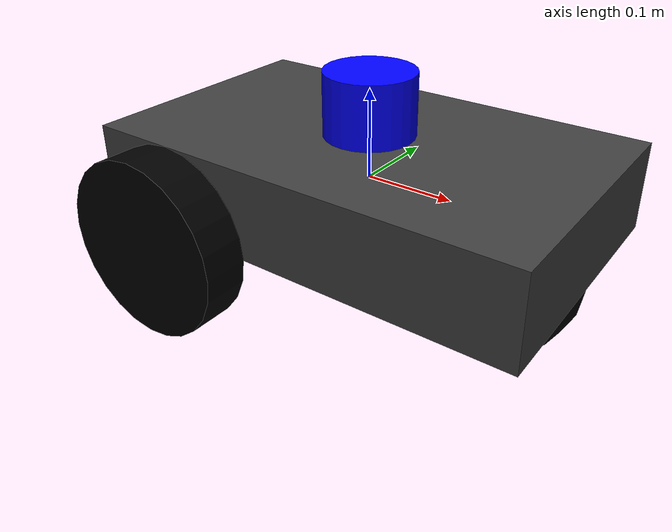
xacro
<?xml version="1.0"?>

<robot name="differential_drive_robot" xmlns:xacro="http://www.ros.org/wiki/xacro">

    <!-- Robot Parameters -->
    <xacro:property name="PI" value="3.14159265"/>
    <xacro:property name="body_length" value="0.5"/>
    <xacro:property name="body_width" value="0.3"/>
    <xacro:property name="body_height" value="0.1"/>
    <xacro:property name="body_density" value="7850.0"/> <!-- Steel -->
    <xacro:property name="body_mass" value="${body_density * body_length * body_height * body_width}"/>
    <xacro:property name="body_inertia_x" value="${1.0/12.0 * body_mass * (body_height*body_height + body_width*body_width)}"/>
    <xacro:property name="body_inertia_y" value="${1.0/12.0 * body_mass * (body_length*body_length + body_height*body_height)}"/>
    <xacro:property name="body_inertia_z" value="${1.0/12.0 * body_mass * (body_length*body_length + body_width*body_width)}"/>

    <xacro:property name="wheel_radius" value="0.1"/>
    <xacro:property name="wheel_width" value="0.05"/>
    <xacro:property name="wheel_separation" value="${body_width + wheel_width}"/>
    <xacro:property name="wheel_offset" value="${body_length/2 - wheel_radius}"/>
    <xacro:property name="wheel_density" value="900"/> <!-- Ruber -->
    <xacro:property name="wheel_mass" value="${wheel_density * PI * wheel_radius * wheel_radius * wheel_width}"/>
    <xacro:property name="wheel_inertia_x" value="${1.0/12.0 * wheel_mass * (3*wheel_radius*wheel_radius + wheel_width*wheel_width)}"/>
    <xacro:property name="wheel_inertia_y" value="${1.0/12.0 * wheel_mass * (3*wheel_radius*wheel_radius + wheel_width*wheel_width)}"/>
    <xacro:property name="wheel_inertia_z" value="${1.0/2.0 * wheel_mass * wheel_radius * wheel_radius}"/>

    <xacro:property name="caster_radius" value="0.1"/>
    <xacro:property name="caster_offset" value="${body_length/2 - caster_radius}"/>
    <xacro:property name="caster_density" value="0.1"/>
    <xacro:property name="caster_mass" value="${caster_density * 4.0/3.0 * PI * caster_radius * caster_radius * caster_radius}"/>
    <xacro:property name="caster_inertia_x" value="${2.0/5.0 * caster_mass * caster_radius * caster_radius}"/>
    <xacro:property name="caster_inertia_y" value="${2.0/5.0 * caster_mass * caster_radius * caster_radius}"/>
    <xacro:property name="caster_inertia_z" value="${2.0/5.0 * caster_mass * caster_radius * caster_radius}"/>

    <xacro:property name="lidar_radius" value="0.05"/>
    <xacro:property name="lidar_height" value="0.07"/>
    <xacro:property name="lidar_mass" value="0.1"/>

    <!-- Control Parameters -->
    <xacro:property name="max_linear_acceleration" value="10"/>

    <!-- Links -->

    <!-- Body Link -->
    <link name="body_link">
        <visual>
            <origin xyz="0.0 0.0 0.0" rpy="0.0 0.0 0.0"/>
            <geometry>
                <box size="${body_length} ${body_width} ${body_height}"/>
            </geometry>
            <material name="body_material">
                <color rgba="0.25 0.25 0.25 1.0"/>
            </material>
        </visual>
        <collision>
            <origin xyz="0.0 0.0 0.0" rpy="0.0 0.0 0.0"/>
            <geometry>
                <box size="${body_length} ${body_width} ${body_height}"/>
            </geometry>
        </collision>
        <inertial>
            <mass value="10"/>
            <inertia ixx="${body_inertia_x}" ixy="0.0" ixz="0.0" iyy="${body_inertia_y}" iyz="0" izz="${body_inertia_z}"/>
            <origin xyz="0 0 0" rpy="0 0 0"/>
        </inertial>
    </link>

    <!-- Left Wheel -->
    <link name="left_wheel_link">
        <visual>
            <origin xyz="0.0 0.0 0.0" rpy="1.570795 0.0 0.0"/>
            <geometry>
                <cylinder radius="${wheel_radius}" length="${wheel_width}"/>
            </geometry>
            <material name="wheel_material">
                <color rgba="0.0 0.0 0.0 1.0"/>
            </material>
        </visual>
        <collision>
            <origin xyz="0.0 0.0 0.0" rpy="1.570795 0.0 0.0"/>
            <geometry>
                <cylinder radius="${wheel_radius}" length="${wheel_width}"/>
            </geometry>
        </collision>
        <inertial>
            <mass value="2"/>
            <inertia ixx="${wheel_inertia_x}" ixy="0.0" ixz="0.0" iyy="${wheel_inertia_y}" iyz="0" izz="${wheel_inertia_z}"/>
            <origin xyz="0.0 0.0 0.0" rpy="1.570795 0.0 0.0"/>
        </inertial>
    </link>

    <!-- Right Wheel -->
    <link name="right_wheel_link">
        <visual>
            <origin xyz="0.0 0.0 0.0" rpy="1.570795 0.0 0.0"/>
            <geometry>
                <cylinder radius="${wheel_radius}" length="${wheel_width}"/>
            </geometry>
            <material name="wheel_material">
                <color rgba="0.0 0.0 0.0 1.0"/>
            </material>
        </visual>
        <collision>
            <origin xyz="0.0 0.0 0.0" rpy="1.570795 0.0 0.0"/>
            <geometry>
                <cylinder radius="${wheel_radius}" length="${wheel_width}"/>
            </geometry>
        </collision>
        <inertial>
            <mass value="2"/>
            <inertia ixx="${wheel_inertia_x}" ixy="0.0" ixz="0.0" iyy="${wheel_inertia_y}" iyz="0" izz="${wheel_inertia_z}"/>
            <origin xyz="0.0 0.0 0.0" rpy="1.570795 0.0 0.0"/>
        </inertial>
    </link>

    <!-- Caster Wheel -->
    <link name="caster_link">
        <visual>
            <origin xyz="0.0 0.0 0.0" rpy="0.0 0.0 0.0"/>
            <geometry>
                <sphere radius="${caster_radius}"/>
            </geometry>
            <material name="caster_material">
                <color rgba="0.0 0.0 0.0 1.0"/>
            </material>
        </visual>
        <collision>
            <origin xyz="0.0 0.0 0.0" rpy="0.0 0.0 0.0"/>
            <geometry>
                <sphere radius="${caster_radius}"/>
            </geometry>
        </collision>
        <inertial>
            <mass value="0.5"/>
            <inertia ixx="${caster_inertia_x}" ixy="0.0" ixz="0.0" iyy="${caster_inertia_y}" iyz="0" izz="${caster_inertia_z}"/>
            <origin xyz="0 0 0" rpy="0 0 0"/>
        </inertial>
    </link>

    <!-- Lidar Link -->
    <link name="lidar_link">
        <visual>
            <origin xyz="0.0 0.0 0.0" rpy="0.0 0.0 0.0"/>
            <geometry>
                <cylinder radius="${lidar_radius}" length="${lidar_height}"/>
            </geometry>
            <material name="lidar_material">
                <color rgba="0.0 0.0 1.0 1.0"/>
            </material>
        </visual>
        <collision>
            <origin xyz="0.0 0.0 0.0" rpy="0.0 0.0 0.0"/>
            <geometry>
                <cylinder radius="${lidar_radius}" length="${lidar_height}"/>
            </geometry>
        </collision>
        <inertial>
            <mass value="${lidar_mass}"/>
            <inertia ixx="${1.0/12.0 * lidar_mass * (3*lidar_radius*lidar_radius + lidar_height*lidar_height)}"
                     ixy="0.0" ixz="0.0"
                     iyy="${1.0/12.0 * lidar_mass * (3*lidar_radius*lidar_radius + lidar_height*lidar_height)}"
                     iyz="0"
                     izz="${1.0/2.0 * lidar_mass * lidar_radius * lidar_radius}"/>
            <origin xyz="0 0 0" rpy="0 0 0"/>
        </inertial>
    </link>

    <!-- Joints -->

    <!-- Left Wheel Joint -->
    <joint name="left_wheel_joint" type="continuous">
        <origin xyz="-${wheel_offset} ${wheel_separation/2} -${wheel_radius/2}" rpy="0 0 0"/>
        <parent link="body_link"/>
        <child link="left_wheel_link"/>
        <axis xyz="0 1 0"/>
        <limit effort="100" velocity="10.0"/>
        <dynamics damping="0.1" friction="0.1"/>
    </joint>

    <!-- Right Wheel Joint -->
    <joint name="right_wheel_joint" type="continuous">
        <origin xyz="-${wheel_offset} ${-wheel_separation/2} -${wheel_radius/2}" rpy="0 0 0"/>
        <parent link="body_link"/>
        <child link="right_wheel_link"/>
        <axis xyz="0 1 0"/>
        <limit effort="100" velocity="10.0"/>
        <dynamics damping="0.1" friction="0.1"/>
    </joint>

    <!-- Caster Wheel Joint (fixed) -->
    <joint name="caster_joint" type="fixed">
        <origin xyz="${caster_offset} 0 -${caster_radius/2}" rpy="0 0 0"/>
        <parent link="body_link"/>
        <child link="caster_link"/>
    </joint>

    <!-- Lidar Joint (fixed) -->
    <joint name="lidar_joint" type="fixed">
        <origin xyz="0.0 0.0 ${body_height/2 + lidar_height/2}" rpy="0 0 0"/>
        <parent link="body_link"/>
        <child link="lidar_link"/>
    </joint>

    <!-- Gazebo Parameters -->
    <gazebo reference="body_link">
        <mu1>1.0</mu1>
        <mu2>1.0</mu2>
    </gazebo>

    <gazebo reference="right_wheel_link">
        <mu1>1.0</mu1>
        <mu2>1.0</mu2>
    </gazebo>

    <gazebo reference="left_wheel_link">
        <mu1>1.0</mu1>
        <mu2>1.0</mu2>
    </gazebo>

    <gazebo reference="caster_link">
        <mu1>0.000001</mu1>
        <mu2>0.000001</mu2>
    </gazebo>

    <!-- Gazebo Plugins -->
    <gazebo>
        <plugin filename="gz-sim-diff-drive-system" name="gz::sim::systems::DiffDrive">
            <right_joint>right_wheel_joint</right_joint>
            <left_joint>left_wheel_joint</left_joint>
            <wheel_separation>${wheel_separation}</wheel_separation>
            <wheel_radius>${wheel_radius}</wheel_radius>
            <max_linear_acceleration>${max_linear_acceleration}</max_linear_acceleration>
            <odom_publish_frequency>100</odom_publish_frequency>
            <topic>cmd_vel</topic>
            <odom_topic>odom</odom_topic>
        </plugin>

        <plugin filename="gz-sim-joint-state-publisher-system" name="gz::sim::systems::JointStatePublisher">
            <topic>joint_states</topic>
            <joint_name>right_wheel_joint</joint_name>
            <joint_name>left_wheel_joint</joint_name>
        </plugin>
    </gazebo>

    <!-- Lidar Sensor -->
    <gazebo reference="lidar_link">
        <sensor name="lidar_sensor" type="gpu_lidar">
            <topic>lidar</topic>
            <update_rate>10</update_rate>
            <lidar>
                <scan>
                    <horizontal>
                        <samples>360</samples>
                        <resolution>1</resolution>
                        <min_angle>-${PI}</min_angle>
                        <max_angle>${PI}</max_angle>
                    </horizontal>
                </scan>
                <range>
                    <min>0.1</min>
                    <max>30.0</max>
                    <resolution>0.01</resolution>
                </range>
                <noise>
                    <type>gaussian</type>
                    <mean>0.0</mean>
                    <stddev>0.01</stddev>
                </noise>
            </lidar>
            <alwaysOn>true</alwaysOn>
            <visualize>true</visualize>
        </sensor>
    </gazebo>

</robot>
